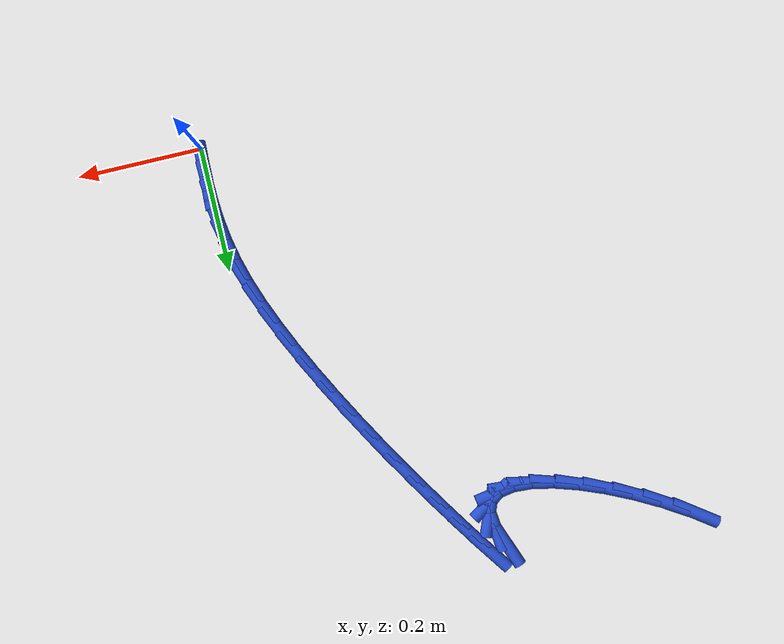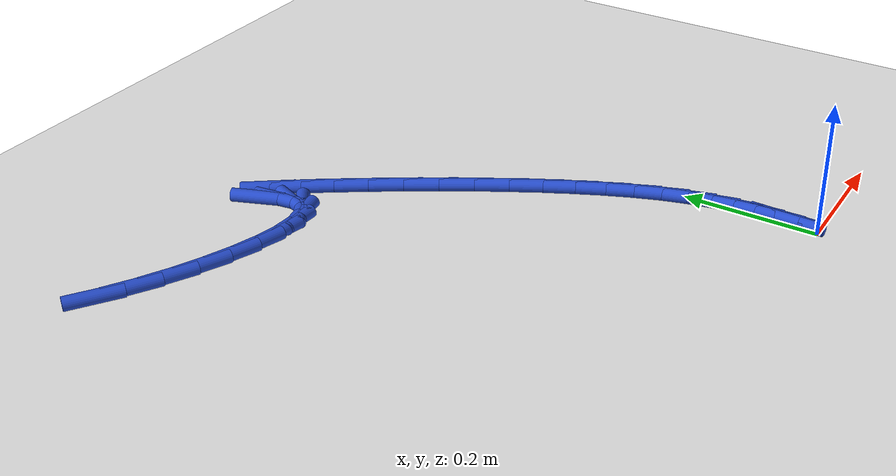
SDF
<sdf version="1.6">
 <world name="default">
  <model name="ground_plane">
   <static>1</static>
   <link name="link">
    <collision name="collision">
     <geometry><plane><normal>0 0 1</normal><size>100 100</size></plane></geometry>
     <surface><friction><ode><mu>100</mu><mu2>50</mu2></ode></friction></surface>
    </collision>
    <visual name="visual">
     <cast_shadows>0</cast_shadows>
     <geometry><plane><normal>0 0 1</normal><size>100 100</size></plane></geometry>
     <material>
      <script><uri>file://media/materials/scripts/gazebo.material</uri><name>Gazebo/WhiteGlow</name></script>
     </material>
    </visual>
   </link>
  </model>
  <model name="line">
   <link name="link_1">
    <pose>0.0009696372270421467 0.030510044156654634 0.01 0 1.57 1.5626794963856356</pose>
    <collision name="collision">
     <geometry><cylinder><radius>0.01</radius><length>0.08</length></cylinder></geometry>
    </collision>
    <visual name="visual">
     <material>
      <script><name>Gazebo/Blue</name><uri>file://media/materials/scripts/gazebo.material</uri></script>
     </material>
     <geometry><cylinder><radius>0.01</radius><length>0.08</length></cylinder></geometry>
    </visual>
   </link>
   <link name="link_2">
    <pose>0.0012147351030741545 0.06070563542335232 0.01 0 1.57 -1.5394462232085644</pose>
    <collision name="collision">
     <geometry><cylinder><radius>0.01</radius><length>0.08</length></cylinder></geometry>
    </collision>
    <visual name="visual">
     <material>
      <script><name>Gazebo/Blue</name><uri>file://media/materials/scripts/gazebo.material</uri></script>
     </material>
     <geometry><cylinder><radius>0.01</radius><length>0.08</length></cylinder></geometry>
    </visual>
   </link>
   <link name="link_3">
    <pose>0.0002617577878162975 0.09109357617121212 0.01 0 1.57 -1.486569121238892</pose>
    <collision name="collision">
     <geometry><cylinder><radius>0.01</radius><length>0.08</length></cylinder></geometry>
    </collision>
    <visual name="visual">
     <material>
      <script><name>Gazebo/Blue</name><uri>file://media/materials/scripts/gazebo.material</uri></script>
     </material>
     <geometry><cylinder><radius>0.01</radius><length>0.08</length></cylinder></geometry>
    </visual>
   </link>
   <link name="link_4">
    <pose>-0.00236283055901115 0.122180668771353 0.01 0 1.57 -1.4241549413371486</pose>
    <collision name="collision">
     <geometry><cylinder><radius>0.01</radius><length>0.08</length></cylinder></geometry>
    </collision>
    <visual name="visual">
     <material>
      <script><name>Gazebo/Blue</name><uri>file://media/materials/scripts/gazebo.material</uri></script>
     </material>
     <geometry><cylinder><radius>0.01</radius><length>0.08</length></cylinder></geometry>
    </visual>
   </link>
   <link name="link_5">
    <pose>-0.00713256577768791 0.15447371559489392 0.01 0 1.57 -1.3568521217161276</pose>
    <collision name="collision">
     <geometry><cylinder><radius>0.01</radius><length>0.08</length></cylinder></geometry>
    </collision>
    <visual name="visual">
     <material>
      <script><name>Gazebo/Blue</name><uri>file://media/materials/scripts/gazebo.material</uri></script>
     </material>
     <geometry><cylinder><radius>0.01</radius><length>0.08</length></cylinder></geometry>
    </visual>
   </link>
   <link name="link_6">
    <pose>-0.014520983708493715 0.188479519012954 0.01 0 1.57 -1.289168441655071</pose>
    <collision name="collision">
     <geometry><cylinder><radius>0.01</radius><length>0.08</length></cylinder></geometry>
    </collision>
    <visual name="visual">
     <material>
      <script><name>Gazebo/Blue</name><uri>file://media/materials/scripts/gazebo.material</uri></script>
     </material>
     <geometry><cylinder><radius>0.01</radius><length>0.08</length></cylinder></geometry>
    </visual>
   </link>
   <link name="link_7">
    <pose>-0.02500162019170828 0.22470488139665207 0.01 0 1.57 -1.2259756361821696</pose>
    <collision name="collision">
     <geometry><cylinder><radius>0.01</radius><length>0.08</length></cylinder></geometry>
    </collision>
    <visual name="visual">
     <material>
      <script><name>Gazebo/Blue</name><uri>file://media/materials/scripts/gazebo.material</uri></script>
     </material>
     <geometry><cylinder><radius>0.01</radius><length>0.08</length></cylinder></geometry>
    </visual>
   </link>
   <link name="link_8">
    <pose>-0.03895417391386646 0.2635515287089811 0.01 0 1.57 -1.1752619252486418</pose>
    <collision name="collision">
     <geometry><cylinder><radius>0.01</radius><length>0.08</length></cylinder></geometry>
    </collision>
    <visual name="visual">
     <material>
      <script><name>Gazebo/Blue</name><uri>file://media/materials/scripts/gazebo.material</uri></script>
     </material>
     <geometry><cylinder><radius>0.01</radius><length>0.08</length></cylinder></geometry>
    </visual>
   </link>
   <link name="link_9">
    <pose>-0.05615369847098064 0.3047441210411797 0.01 0 1.57 -1.1357443378032641</pose>
    <collision name="collision">
     <geometry><cylinder><radius>0.01</radius><length>0.08</length></cylinder></geometry>
    </collision>
    <visual name="visual">
     <material>
      <script><name>Gazebo/Blue</name><uri>file://media/materials/scripts/gazebo.material</uri></script>
     </material>
     <geometry><cylinder><radius>0.01</radius><length>0.08</length></cylinder></geometry>
    </visual>
   </link>
   <link name="link_10">
    <pose>-0.07613549073038313 0.3477388451253921 0.01 0 1.57 -1.1040338345905147</pose>
    <collision name="collision">
     <geometry><cylinder><radius>0.01</radius><length>0.08</length></cylinder></geometry>
    </collision>
    <visual name="visual">
     <material>
      <script><name>Gazebo/Blue</name><uri>file://media/materials/scripts/gazebo.material</uri></script>
     </material>
     <geometry><cylinder><radius>0.01</radius><length>0.08</length></cylinder></geometry>
    </visual>
   </link>
   <link name="link_11">
    <pose>-0.09843424539618331 0.3919912134070214 0.01 0 1.57 -1.0779209292897751</pose>
    <collision name="collision">
     <geometry><cylinder><radius>0.01</radius><length>0.08</length></cylinder></geometry>
    </collision>
    <visual name="visual">
     <material>
      <script><name>Gazebo/Blue</name><uri>file://media/materials/scripts/gazebo.material</uri></script>
     </material>
     <geometry><cylinder><radius>0.01</radius><length>0.08</length></cylinder></geometry>
    </visual>
   </link>
   <link name="link_12">
    <pose>-0.12258465717249051 0.43695673833147053 0.01 0 1.57 -1.055906318742567</pose>
    <collision name="collision">
     <geometry><cylinder><radius>0.01</radius><length>0.08</length></cylinder></geometry>
    </collision>
    <visual name="visual">
     <material>
      <script><name>Gazebo/Blue</name><uri>file://media/materials/scripts/gazebo.material</uri></script>
     </material>
     <geometry><cylinder><radius>0.01</radius><length>0.08</length></cylinder></geometry>
    </visual>
   </link>
   <link name="link_13">
    <pose>-0.14812142076341414 0.482090932344143 0.01 0 1.57 -1.0369278652685587</pose>
    <collision name="collision">
     <geometry><cylinder><radius>0.01</radius><length>0.08</length></cylinder></geometry>
    </collision>
    <visual name="visual">
     <material>
      <script><name>Gazebo/Blue</name><uri>file://media/materials/scripts/gazebo.material</uri></script>
     </material>
     <geometry><cylinder><radius>0.01</radius><length>0.08</length></cylinder></geometry>
    </visual>
   </link>
   <link name="link_14">
    <pose>-0.17457923087306362 0.5268493078904418 0.01 0 1.57 -1.0201963430898435</pose>
    <collision name="collision">
     <geometry><cylinder><radius>0.01</radius><length>0.08</length></cylinder></geometry>
    </collision>
    <visual name="visual">
     <material>
      <script><name>Gazebo/Blue</name><uri>file://media/materials/scripts/gazebo.material</uri></script>
     </material>
     <geometry><cylinder><radius>0.01</radius><length>0.08</length></cylinder></geometry>
    </visual>
   </link>
   <link name="link_15">
    <pose>-0.2014927822055482 0.5706873774157702 0.01 0 1.57 -1.0050894761050686</pose>
    <collision name="collision">
     <geometry><cylinder><radius>0.01</radius><length>0.08</length></cylinder></geometry>
    </collision>
    <visual name="visual">
     <material>
      <script><name>Gazebo/Blue</name><uri>file://media/materials/scripts/gazebo.material</uri></script>
     </material>
     <geometry><cylinder><radius>0.01</radius><length>0.08</length></cylinder></geometry>
    </visual>
   </link>
   <link name="link_16">
    <pose>-0.22839676946497742 0.6130606533655312 0.01 0 1.57 -0.9910754203302397</pose>
    <collision name="collision">
     <geometry><cylinder><radius>0.01</radius><length>0.08</length></cylinder></geometry>
    </collision>
    <visual name="visual">
     <material>
      <script><name>Gazebo/Blue</name><uri>file://media/materials/scripts/gazebo.material</uri></script>
     </material>
     <geometry><cylinder><radius>0.01</radius><length>0.08</length></cylinder></geometry>
    </visual>
   </link>
   <link name="link_17">
    <pose>-0.2548258873554605 0.6534246481851281 0.01 0 1.57 -0.9776457558575486</pose>
    <collision name="collision">
     <geometry><cylinder><radius>0.01</radius><length>0.08</length></cylinder></geometry>
    </collision>
    <visual name="visual">
     <material>
      <script><name>Gazebo/Blue</name><uri>file://media/materials/scripts/gazebo.material</uri></script>
     </material>
     <geometry><cylinder><radius>0.01</radius><length>0.08</length></cylinder></geometry>
    </visual>
   </link>
   <link name="link_18">
    <pose>-0.28031483058110684 0.6912348743199638 0.01 0 1.57 -0.9642377615726986</pose>
    <collision name="collision">
     <geometry><cylinder><radius>0.01</radius><length>0.08</length></cylinder></geometry>
    </collision>
    <visual name="visual">
     <material>
      <script><name>Gazebo/Blue</name><uri>file://media/materials/scripts/gazebo.material</uri></script>
     </material>
     <geometry><cylinder><radius>0.01</radius><length>0.08</length></cylinder></geometry>
    </visual>
   </link>
   <link name="link_19">
    <pose>-0.304398293846026 0.7259468442154421 0.01 0 1.57 -0.9501127625240884</pose>
    <collision name="collision">
     <geometry><cylinder><radius>0.01</radius><length>0.08</length></cylinder></geometry>
    </collision>
    <visual name="visual">
     <material>
      <script><name>Gazebo/Blue</name><uri>file://media/materials/scripts/gazebo.material</uri></script>
     </material>
     <geometry><cylinder><radius>0.01</radius><length>0.08</length></cylinder></geometry>
    </visual>
   </link>
   <link name="link_31">
    <pose>-0.3324684773406483 0.7206145583281722 0.01 0 1.57 -1.2090834098077756</pose>
    <collision name="collision">
     <geometry><cylinder><radius>0.01</radius><length>0.08</length></cylinder></geometry>
    </collision>
    <visual name="visual">
     <material>
      <script><name>Gazebo/Blue</name><uri>file://media/materials/scripts/gazebo.material</uri></script>
     </material>
     <geometry><cylinder><radius>0.01</radius><length>0.08</length></cylinder></geometry>
    </visual>
   </link>
   <link name="link_32">
    <pose>-0.3210853139922979 0.6905289999463264 0.01 0 1.57 -1.4529396408153854</pose>
    <collision name="collision">
     <geometry><cylinder><radius>0.01</radius><length>0.08</length></cylinder></geometry>
    </collision>
    <visual name="visual">
     <material>
      <script><name>Gazebo/Blue</name><uri>file://media/materials/scripts/gazebo.material</uri></script>
     </material>
     <geometry><cylinder><radius>0.01</radius><length>0.08</length></cylinder></geometry>
    </visual>
   </link>
   <link name="link_33">
    <pose>-0.31818871235353396 0.6660655787837115 0.01 0 1.57 1.1904567449538879</pose>
    <collision name="collision">
     <geometry><cylinder><radius>0.01</radius><length>0.08</length></cylinder></geometry>
    </collision>
    <visual name="visual">
     <material>
      <script><name>Gazebo/Blue</name><uri>file://media/materials/scripts/gazebo.material</uri></script>
     </material>
     <geometry><cylinder><radius>0.01</radius><length>0.08</length></cylinder></geometry>
    </visual>
   </link>
   <link name="link_34">
    <pose>-0.32508360745226117 0.6488199997983508 0.01 0 1.57 0.589653028405353</pose>
    <collision name="collision">
     <geometry><cylinder><radius>0.01</radius><length>0.08</length></cylinder></geometry>
    </collision>
    <visual name="visual">
     <material>
      <script><name>Gazebo/Blue</name><uri>file://media/materials/scripts/gazebo.material</uri></script>
     </material>
     <geometry><cylinder><radius>0.01</radius><length>0.08</length></cylinder></geometry>
    </visual>
   </link>
   <link name="link_35">
    <pose>-0.340681292859557 0.6383843178126629 0.01 0 1.57 0.1768060039253963</pose>
    <collision name="collision">
     <geometry><cylinder><radius>0.01</radius><length>0.08</length></cylinder></geometry>
    </collision>
    <visual name="visual">
     <material>
      <script><name>Gazebo/Blue</name><uri>file://media/materials/scripts/gazebo.material</uri></script>
     </material>
     <geometry><cylinder><radius>0.01</radius><length>0.08</length></cylinder></geometry>
    </visual>
   </link>
   <link name="link_36">
    <pose>-0.3637812666558643 0.6342570067790777 0.01 0 1.57 -0.05706157022969296</pose>
    <collision name="collision">
     <geometry><cylinder><radius>0.01</radius><length>0.08</length></cylinder></geometry>
    </collision>
    <visual name="visual">
     <material>
      <script><name>Gazebo/Blue</name><uri>file://media/materials/scripts/gazebo.material</uri></script>
     </material>
     <geometry><cylinder><radius>0.01</radius><length>0.08</length></cylinder></geometry>
    </visual>
   </link>
   <link name="link_37">
    <pose>-0.3931830269216252 0.6359365406500256 0.01 0 1.57 -0.19974217751282627</pose>
    <collision name="collision">
     <geometry><cylinder><radius>0.01</radius><length>0.08</length></cylinder></geometry>
    </collision>
    <visual name="visual">
     <material>
      <script><name>Gazebo/Blue</name><uri>file://media/materials/scripts/gazebo.material</uri></script>
     </material>
     <geometry><cylinder><radius>0.01</radius><length>0.08</length></cylinder></geometry>
    </visual>
   </link>
   <link name="link_38">
    <pose>-0.42768607173728235 0.6429213933779364 0.01 0 1.57 -0.2978347389365399</pose>
    <collision name="collision">
     <geometry><cylinder><radius>0.01</radius><length>0.08</length></cylinder></geometry>
    </collision>
    <visual name="visual">
     <material>
      <script><name>Gazebo/Blue</name><uri>file://media/materials/scripts/gazebo.material</uri></script>
     </material>
     <geometry><cylinder><radius>0.01</radius><length>0.08</length></cylinder></geometry>
    </visual>
   </link>
   <link name="link_39">
    <pose>-0.4660898991832781 0.6547100389152407 0.01 0 1.57 -0.3731289873238947</pose>
    <collision name="collision">
     <geometry><cylinder><radius>0.01</radius><length>0.08</length></cylinder></geometry>
    </collision>
    <visual name="visual">
     <material>
      <script><name>Gazebo/Blue</name><uri>file://media/materials/scripts/gazebo.material</uri></script>
     </material>
     <geometry><cylinder><radius>0.01</radius><length>0.08</length></cylinder></geometry>
    </visual>
   </link>
   <link name="link_40">
    <pose>-0.5071940073400548 0.6708009512143681 0.01 0 1.57 -0.43681678667540025</pose>
    <collision name="collision">
     <geometry><cylinder><radius>0.01</radius><length>0.08</length></cylinder></geometry>
    </collision>
    <visual name="visual">
     <material>
      <script><name>Gazebo/Blue</name><uri>file://media/materials/scripts/gazebo.material</uri></script>
     </material>
     <geometry><cylinder><radius>0.01</radius><length>0.08</length></cylinder></geometry>
    </visual>
   </link>
   <link name="link_41">
    <pose>-0.5497978942880554 0.690692604227749 0.01 0 1.57 -0.4955511020099694</pose>
    <collision name="collision">
     <geometry><cylinder><radius>0.01</radius><length>0.08</length></cylinder></geometry>
    </collision>
    <visual name="visual">
     <material>
      <script><name>Gazebo/Blue</name><uri>file://media/materials/scripts/gazebo.material</uri></script>
     </material>
     <geometry><cylinder><radius>0.01</radius><length>0.08</length></cylinder></geometry>
    </visual>
   </link>
   <link name="link_42">
    <pose>-0.5927010581077218 0.7138834719078133 0.01 0 1.57 -0.5540898361481409</pose>
    <collision name="collision">
     <geometry><cylinder><radius>0.01</radius><length>0.08</length></cylinder></geometry>
    </collision>
    <visual name="visual">
     <material>
      <script><name>Gazebo/Blue</name><uri>file://media/materials/scripts/gazebo.material</uri></script>
     </material>
     <geometry><cylinder><radius>0.01</radius><length>0.08</length></cylinder></geometry>
    </visual>
   </link>
   <link name="link_43">
    <pose>-0.6347029968794969 0.7398720282069915 0.01 0 1.57 -0.6166651489633308</pose>
    <collision name="collision">
     <geometry><cylinder><radius>0.01</radius><length>0.08</length></cylinder></geometry>
    </collision>
    <visual name="visual">
     <material>
      <script><name>Gazebo/Blue</name><uri>file://media/materials/scripts/gazebo.material</uri></script>
     </material>
     <geometry><cylinder><radius>0.01</radius><length>0.08</length></cylinder></geometry>
    </visual>
   </link>
   <link name="link_271">
    <pose>0.0010816372625723615 0.03039529094009833 0.01 0 1.57 1.5357981380648922</pose>
    <collision name="collision">
     <geometry><cylinder><radius>0.01</radius><length>0.08</length></cylinder></geometry>
    </collision>
    <visual name="visual">
     <material>
      <script><name>Gazebo/Blue</name><uri>file://media/materials/scripts/gazebo.material</uri></script>
     </material>
     <geometry><cylinder><radius>0.01</radius><length>0.08</length></cylinder></geometry>
    </visual>
   </link>
   <link name="link_272">
    <pose>0.002110735387315827 0.05978760969090013 0.01 0 1.57 1.5355070898119842</pose>
    <collision name="collision">
     <geometry><cylinder><radius>0.01</radius><length>0.08</length></cylinder></geometry>
    </collision>
    <visual name="visual">
     <material>
      <script><name>Gazebo/Blue</name><uri>file://media/materials/scripts/gazebo.material</uri></script>
     </material>
     <geometry><cylinder><radius>0.01</radius><length>0.08</length></cylinder></geometry>
    </visual>
   </link>
  </model>
 </world>
</sdf>
